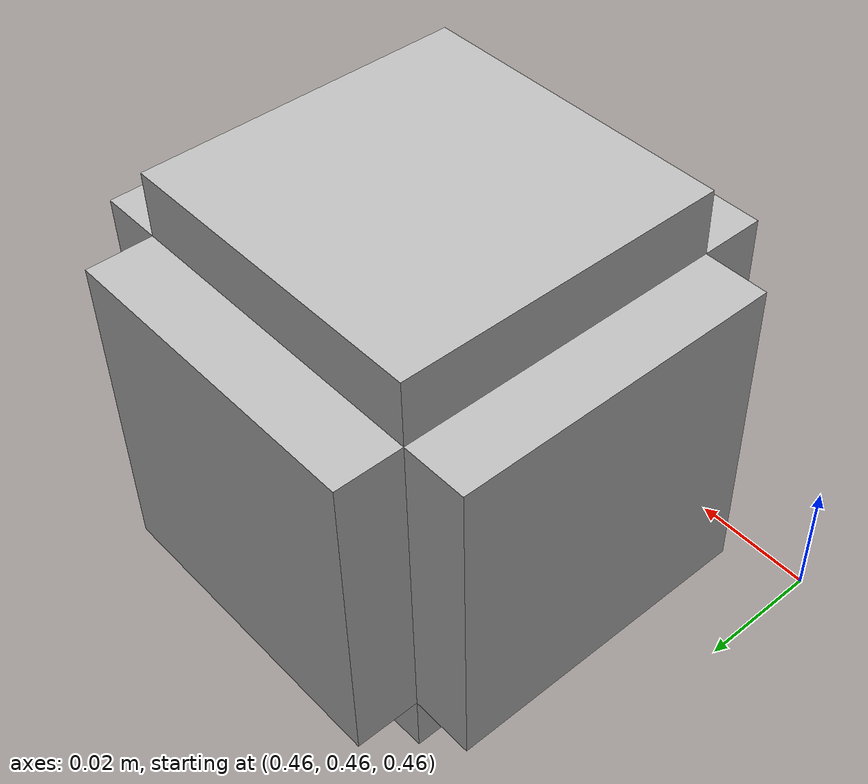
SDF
<?xml version="1.0"?><sdf version="1.6"><model name="cube2"><pose>0.5 0.5 0.5 0 0 0.0</pose><link name="cube2_link"><inertial><mass>0.05</mass><inertia><ixx>0.000020833</ixx><ixy>0</ixy><ixz>0</ixz><iyy>0.000020833</iyy><iyz>0</iyz><izz>0.000020833</izz></inertia></inertial><collision name="collision"><geometry><box><size>0.05 0.05 0.05</size></box></geometry></collision><visual name="body_visual"><geometry><box><size>0.05 0.05 0.05</size></box></geometry><material><ambient>0.95 0.95 0.95 1</ambient><diffuse>0.95 0.95 0.95 1</diffuse></material></visual><visual name="face_xp"><pose>0.030000000000000002 0 0 0 0 0</pose><geometry><box><size>0.01 0.05 0.05</size></box></geometry><material><script><uri>file:///volume/models/cube_model/materials/scripts</uri><uri>file:///volume/models/cube_model/materials/textures</uri><name>aruco_1</name></script></material></visual><visual name="face_xm"><pose>-0.030000000000000002 0 0 0 0 0</pose><geometry><box><size>0.01 0.05 0.05</size></box></geometry><material><script><uri>file:///volume/models/cube_model/materials/scripts</uri><uri>file:///volume/models/cube_model/materials/textures</uri><name>aruco_2</name></script></material></visual><visual name="face_yp"><pose>0 0.030000000000000002 0 0 0 0</pose><geometry><box><size>0.05 0.01 0.05</size></box></geometry><material><script><uri>file:///volume/models/cube_model/materials/scripts</uri><uri>file:///volume/models/cube_model/materials/textures</uri><name>aruco_3</name></script></material></visual><visual name="face_ym"><pose>0 -0.030000000000000002 0 0 0 0</pose><geometry><box><size>0.05 0.01 0.05</size></box></geometry><material><script><uri>file:///volume/models/cube_model/materials/scripts</uri><uri>file:///volume/models/cube_model/materials/textures</uri><name>aruco_4</name></script></material></visual><visual name="face_zp"><pose>0 0 0.030000000000000002 0 0 0</pose><geometry><box><size>0.05 0.05 0.01</size></box></geometry><material><script><uri>file:///volume/models/cube_model/materials/scripts</uri><uri>file:///volume/models/cube_model/materials/textures</uri><name>aruco_5</name></script></material></visual><visual name="face_zm"><pose>0 0 -0.030000000000000002 0 0 0</pose><geometry><box><size>0.05 0.05 0.01</size></box></geometry><material><script><uri>file:///volume/models/cube_model/materials/scripts</uri><uri>file:///volume/models/cube_model/materials/textures</uri><name>blank</name></script></material></visual></link></model></sdf>
